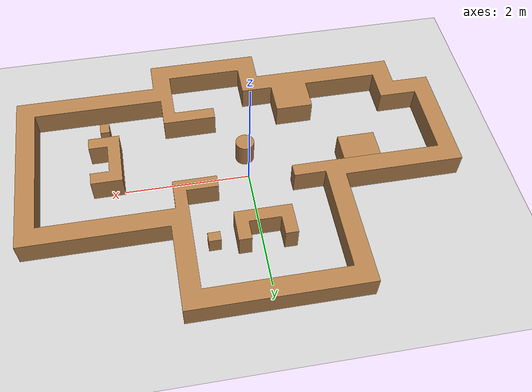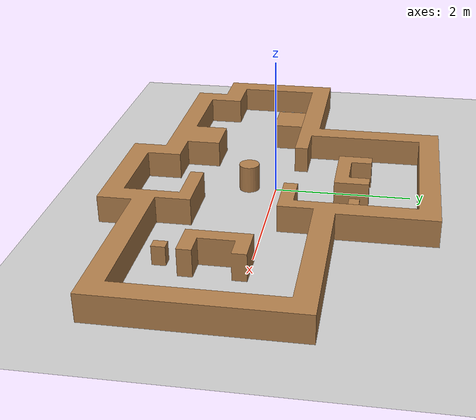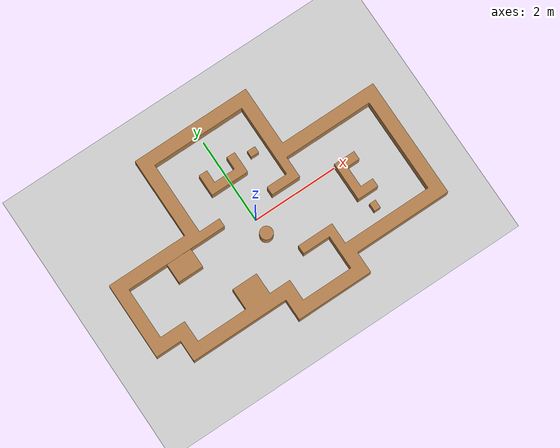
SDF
<sdf version='1.7'>
  <world name='default'>
    <!-- A global light source -->
    <include>
      <uri>model://sun</uri>
    </include>

    <!-- A ground plane -->
    <include>
      <uri>model://ground_plane</uri>
    </include>

    <physics type="ode">
      <real_time_update_rate>0.0</real_time_update_rate>
      <max_step_size>0.003</max_step_size>
      <ode>
        <solver>
          <type>quick</type>
          <iters>150</iters>
          <precon_iters>0</precon_iters>
          <sor>1.400000</sor>
          <use_dynamic_moi_rescaling>1</use_dynamic_moi_rescaling>
        </solver>
        <constraints>
          <cfm>0.00001</cfm>
          <erp>0.2</erp>
          <contact_max_correcting_vel>2000.000000</contact_max_correcting_vel>
          <contact_surface_layer>0.01000</contact_surface_layer>
        </constraints>
      </ode>
    </physics>

    <!-- Load model -->
    <model name='world'>
      <include>
        <uri>model://new_stage_1</uri>
        <pose>0.55 0.2 0 1.57 0 0</pose>
      </include>
    </model>

    <model name='obs_1'>
      <include>
        <uri>model://new_stage_1_obs</uri>
        <pose>0.2 1.1 0.4 1.57 0 3.14</pose>
      </include>
    </model>

    <model name='obs_2'>
      <include>
        <uri>model://new_stage_1_obs</uri>
        <pose>2.2 -0.68 0.4 1.57 0 1.57</pose>
      </include>
    </model>

    <model name='obs_3'>
      <include>
        <uri>model://cube_0.6_0.5</uri>
        <pose>-1.8 0 -0.05 0 0 0</pose>
      </include>
    </model>

    <model name='obs_4'>
      <include>
        <uri>model://cube</uri>
        <pose>0.74 1.21 0 0 0 0</pose>
      </include>
    </model>

    <model name='obs_5'>
      <include>
        <uri>model://cube</uri>
        <pose>2.23 -1.17 0 0 0 1.57</pose>
      </include>
    </model>

    <model name='obs_6'>
      <include>
        <uri>model://cross_with_cylinder</uri>
        <pose>0.0 -0.4 0.20 0 0 0</pose>
      </include>
    </model>

    <scene>
      <ambient>0.4 0.4 0.4 1</ambient>
      <background>0.7 0.7 0.7 1</background>
      <shadows>false</shadows>
    </scene>

    <gui fullscreen='0'>
      <camera name='user_camera'>
        <pose>-1.58359 -3.62535 12.9428 -0 1.3378 1.58423</pose>
        <view_controller>orbit</view_controller>
        <projection_type>perspective</projection_type>
      </camera>
    </gui>
  </world>
</sdf>

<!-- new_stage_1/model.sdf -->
<sdf version='1.7'>
  <model name='urdf_1'>
  <static>true</static>
    <link name='base_link'>
      <inertial>
        <pose>-0.37306 0.21 0.38478 0 -0 0</pose>
        <mass>2996</mass>
        <inertia>
          <ixx>6188.8</ixx>
          <ixy>-1.0916e-14</ixy>
          <ixz>8.4617</ixz>
          <iyy>19100</iyy>
          <iyz>-7.506e-14</iyz>
          <izz>12991</izz>
        </inertia>
      </inertial>
      <collision name='base_link_collision'>
        <pose>0 0 0 0 -0 0</pose>
        <geometry>
          <mesh>
            <scale>1 1 1</scale>
            <uri>/home/jiaxin/workspace/turtlebot3/src/turtlebot3_simulations/turtlebot3_gazebo/meshes/base_link.STL</uri>
          </mesh>
        </geometry>
        <max_contacts>10</max_contacts>
        <surface>
          <contact>
            <ode/>
          </contact>
          <bounce/>
          <friction>
            <torsional>
              <ode/>
            </torsional>
            <ode/>
          </friction>
        </surface>
      </collision>
      <visual name='base_link_visual'>
        <pose>0 0 0 0 -0 0</pose>
        <geometry>
          <mesh>
            <scale>1 1 1</scale>
            <uri>/home/jiaxin/workspace/turtlebot3/src/turtlebot3_simulations/turtlebot3_gazebo/meshes/base_link.STL</uri>
          </mesh>
        </geometry>
        <material>
          <script>
            <uri>file://media/materials/scripts/gazebo.material</uri>
            <name>Gazebo/Wood</name>
          </script>
          <ambient>1 0.764706 0.305882 1</ambient>
        </material>
      </visual>
      <self_collide>0</self_collide>
      <enable_wind>0</enable_wind>
      <kinematic>0</kinematic>
    </link>
    <pose>0 0 0 0 -0 0</pose>
  </model>
</sdf>

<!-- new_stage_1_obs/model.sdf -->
<sdf version='1.7'>
  <model name='urdf_1'>
  <static>true</static>
    <link name='base_link'>
      <inertial>
        <pose>0.25 -0.21 0 0 -0 0</pose>
        <mass>120</mass>
        <inertia>
          <ixx>4</ixx>
          <ixy>-1.0446E-16</ixy>
          <ixz>-5.8547E-16</ixz>
          <iyy>13.3</iyy>
          <iyz>2.1232E-16</iyz>
          <izz>12.5</izz>
        </inertia>
      </inertial>
      <collision name='base_link_collision'>
        <pose>0 0 0 0 -0 0</pose>
        <geometry>
          <mesh>
            <scale>1 1 1</scale>
            <uri>/home/jiaxin/workspace/turtlebot3/src/turtlebot3_simulations/turtlebot3_gazebo/meshes/base_link2.STL</uri>
          </mesh>
        </geometry>
        <max_contacts>10</max_contacts>
        <surface>
          <contact>
            <ode/>
          </contact>
          <bounce/>
          <friction>
            <torsional>
              <ode/>
            </torsional>
            <ode/>
          </friction>
        </surface>
      </collision>
      <visual name='base_link_visual'>
        <pose>0 0 0 0 -0 0</pose>
        <geometry>
          <mesh>
            <scale>1 1 1</scale>
            <uri>/home/jiaxin/workspace/turtlebot3/src/turtlebot3_simulations/turtlebot3_gazebo/meshes/base_link2.STL</uri>
          </mesh>
        </geometry>
        <material>
          <script>
            <uri>file://media/materials/scripts/gazebo.material</uri>
            <name>Gazebo/Wood</name>
          </script>
          <ambient>1 0.764706 0.305882 1</ambient>
        </material>
      </visual>
      <self_collide>0</self_collide>
      <enable_wind>0</enable_wind>
      <kinematic>0</kinematic>
    </link>
    <pose>0 0 0 0 -0 0</pose>
  </model>
</sdf>

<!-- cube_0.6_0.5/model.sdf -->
<sdf version='1.7'>
  <model name='cube'>
    <static>true</static>
    <pose>0 0 0 0 -0 0</pose>
    <link name='Wall_28'>
      <collision name='Wall_28_Collision'>
        <geometry>
          <box>
            <size>0.6 0.5 0.4</size>
          </box>
        </geometry>
        <pose>0 0 0.25 0 -0 0</pose>
      </collision>
      <visual name='Wall_28_Visual'>
        <pose>0 0 0.25 0 -0 0</pose>
        <geometry>
          <box>
            <size>0.6 0.5 0.4</size>
          </box>
        </geometry>
        <material>
          <script>
            <uri>file://media/materials/scripts/gazebo.material</uri>
            <name>Gazebo/Wood</name>
          </script>
          <ambient>1 0.764706 0.305882 1</ambient>
        </material>
        <meta>
          <layer>0</layer>
        </meta>
      </visual>
      <pose>0 0 0 0 -0 0</pose>
    </link>
    <static>1</static>
  </model>
</sdf>

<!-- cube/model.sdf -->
<sdf version='1.7'>
  <model name='cube'>
    <static>true</static>
    <pose>0 0 0 0 -0 0</pose>
    <link name='Wall_28'>
      <collision name='Wall_28_Collision'>
        <geometry>
          <box>
            <size>0.19 0.15 0.28</size>
          </box>
        </geometry>
        <pose>0 0 0.14 0 -0 0</pose>
      </collision>
      <visual name='Wall_28_Visual'>
        <pose>0 0 0.14 0 -0 0</pose>
        <geometry>
          <box>
            <size>0.19 0.15 0.28</size>
          </box>
        </geometry>
        <material>
          <script>
            <uri>file://media/materials/scripts/gazebo.material</uri>
            <name>Gazebo/Wood</name>
          </script>
          <ambient>1 0.764706 0.305882 1</ambient>
        </material>
        <meta>
          <layer>0</layer>
        </meta>
      </visual>
      <pose>0 0 0 0 -0 0</pose>
    </link>
    <static>1</static>
  </model>
</sdf>

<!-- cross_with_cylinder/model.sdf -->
<sdf version='1.7'>
  <model name='cross_with_cylinder'>
    <static>true</static>
    <link name='link_0'>
      <inertial>
        <mass>2.84723</mass>
        <inertia>
          <ixx>0.0539787</ixx>
          <ixy>0</ixy>
          <ixz>0</ixz>
          <iyy>0.0539787</iyy>
          <iyz>0</iyz>
          <izz>0.0320313</izz>
        </inertia>
        <pose>0 0 0 0 -0 0</pose>
      </inertial>
      <pose>-0 -0 0 0 -0 0</pose>
      <gravity>1</gravity>
      <self_collide>0</self_collide>
      <kinematic>0</kinematic>
      <enable_wind>0</enable_wind>
      <visual name='visual'>
        <pose>0 0 0 0 -0 0</pose>
        <geometry>
          <cylinder>
            <radius>0.15</radius>
            <length>0.4</length>
          </cylinder>
        </geometry>
        <material>
          <lighting>1</lighting>
          <script>
            <uri>file://media/materials/scripts/gazebo.material</uri>
            <name>Gazebo/Wood</name>
          </script>
          <shader type='pixel'>
            <normal_map>__default__</normal_map>
          </shader>
          <ambient>0.3 0.3 0.3 1</ambient>
          <diffuse>0.7 0.7 0.7 1</diffuse>
          <specular>0.01 0.01 0.01 1</specular>
          <emissive>0 0 0 1</emissive>
        </material>
        <transparency>0</transparency>
        <cast_shadows>1</cast_shadows>
      </visual>
      <collision name='collision'>
        <laser_retro>0</laser_retro>
        <max_contacts>10</max_contacts>
        <pose>0 0 0 0 -0 0</pose>
        <geometry>
          <cylinder>
            <radius>0.15</radius>
            <length>0.4</length>
          </cylinder>
        </geometry>
        <surface>
          <friction>
            <ode>
              <mu>1</mu>
              <mu2>1</mu2>
              <fdir1>0 0 0</fdir1>
              <slip1>0</slip1>
              <slip2>0</slip2>
            </ode>
            <torsional>
              <coefficient>1</coefficient>
              <patch_radius>0</patch_radius>
              <surface_radius>0</surface_radius>
              <use_patch_radius>1</use_patch_radius>
              <ode>
                <slip>0</slip>
              </ode>
            </torsional>
          </friction>
          <bounce>
            <restitution_coefficient>0</restitution_coefficient>
            <threshold>1e+06</threshold>
          </bounce>
          <contact>
            <collide_without_contact>0</collide_without_contact>
            <collide_without_contact_bitmask>1</collide_without_contact_bitmask>
            <collide_bitmask>1</collide_bitmask>
            <ode>
              <soft_cfm>0</soft_cfm>
              <soft_erp>0.2</soft_erp>
              <kp>1e+13</kp>
              <kd>1</kd>
              <max_vel>0.01</max_vel>
              <min_depth>0</min_depth>
            </ode>
            <bullet>
              <split_impulse>1</split_impulse>
              <split_impulse_penetration_threshold>-0.01</split_impulse_penetration_threshold>
              <soft_cfm>0</soft_cfm>
              <soft_erp>0.2</soft_erp>
              <kp>1e+13</kp>
              <kd>1</kd>
            </bullet>
          </contact>
        </surface>
      </collision>
    </link>
    <static>0</static>
    <allow_auto_disable>1</allow_auto_disable>
  </model>
</sdf>
